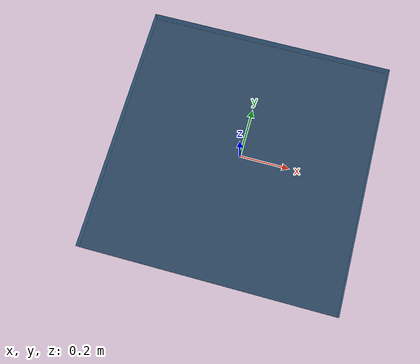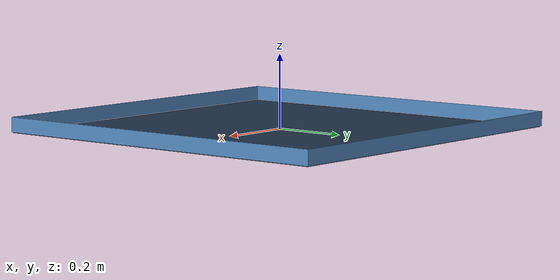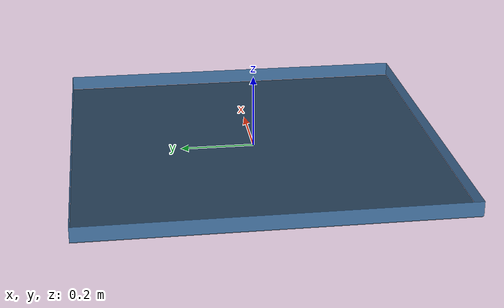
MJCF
<!-- largely based on the dm_control suite pointmass environment:  -->
<mujoco model="walled arena">

    <asset>
        <texture name="grid" type="2d" builtin="checker" rgb1=".1 .2 .3" rgb2=".2 .3 .4" width="300" height="300" mark="edge" markrgb=".2 .3 .4"/>
        <material name="grid" texture="grid" texrepeat="1 1" texuniform="true" reflectance="0.0"/>
        <material name="decoration" rgba=".3 .5 .7 1"/>

    </asset>
    <worldbody>
      <light name="light0" pos="0.25 0.25 1"/>
      <light name="light1" pos="-0.25 -0.25 1"/>
      <camera name="fixed" pos="0 0 .75" quat="1 0 0 0"/>
      <geom name="ground" type="plane" pos="0 0 0" size=".5 .5 .1" material="grid"/>
      <geom name="wall_x" type="plane" pos="-.5 0 .02" zaxis="1 0 0"  size=".02 .5 .02" material="decoration"/>
      <geom name="wall_y" type="plane" pos="0 -.5 .02" zaxis="0 1 0"  size=".5 .02 .02" material="decoration"/>
      <geom name="wall_neg_x" type="plane" pos=".5 0 .02" zaxis="-1 0 0"  size=".02 .5 .02" material="decoration"/>
      <geom name="wall_neg_y" type="plane" pos="0 .5 .02" zaxis="0 -1 0"  size=".5 .02 .02" material="decoration"/>
    </worldbody>

  </mujoco>
